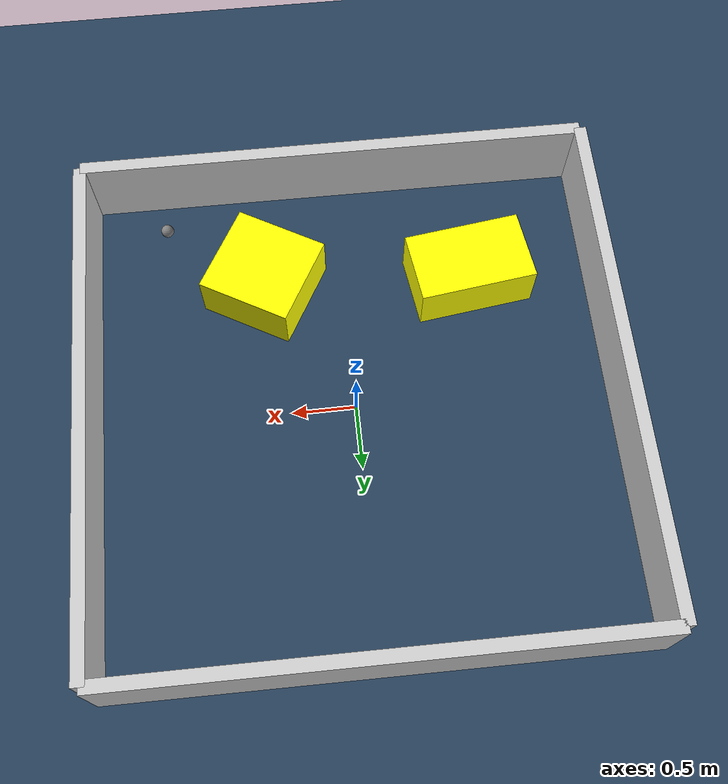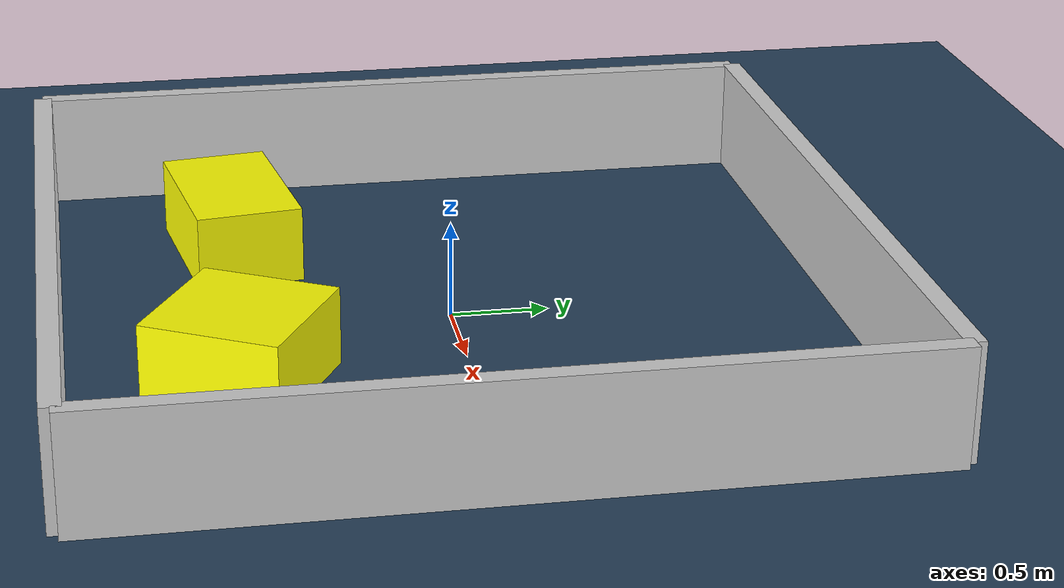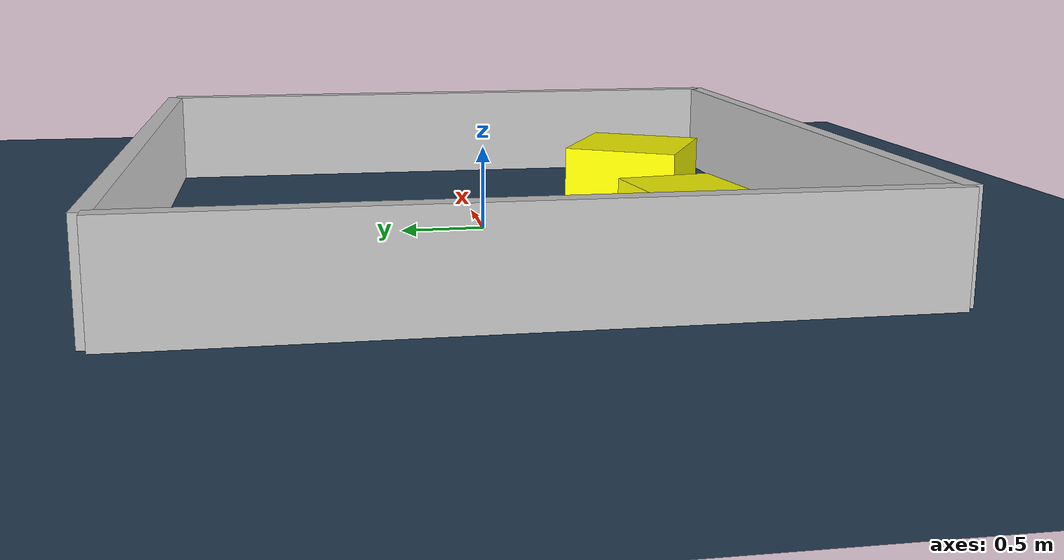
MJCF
<?xml version="1.0" ?>
<mujoco model="generated_environment">
  <option timestep="0.01" integrator="RK4" cone="elliptic"/>
  <default>
    <geom density="1"/>
  </default>
  <asset>
    <texture builtin="gradient" height="3072" rgb1="0.3 0.5 0.7" rgb2="0 0 0" type="skybox" width="512"/>
    <texture builtin="checker" height="300" mark="edge" markrgb="0.8 0.8 0.8" name="groundplane" rgb1="0.2 0.3 0.4" rgb2="0.1 0.2 0.3" type="2d" width="300"/>
    <material name="groundplane" reflectance="0.2" texrepeat="5 5" texture="groundplane" texuniform="true"/>
    <material name="robot" rgba="0.0 1.0 0.0 1"/>
  </asset>
  <worldbody>
    <light dir="0 0 -1" directional="true" pos="0 0 1.5"/>
    <geom condim="4" friction="1.0 0.005 0.001" material="groundplane" name="floor" size="0 0 0.05" type="plane"/>
    <body name="walls">
      <geom name="wall_1" condim="4" pos="-2.0 0.0 0.3" rgba="0.800000011920929 0.800000011920929 0.800000011920929 1.0" size="0.05 2.0 0.3" type="box"/>
      <geom name="wall_2" condim="4" pos="2.0 0.0 0.3" rgba="0.800000011920929 0.800000011920929 0.800000011920929 1.0" size="0.05 2.0 0.3" type="box"/>
      <geom name="wall_3" condim="4" pos="0.0 -2.0 0.3" rgba="0.800000011920929 0.800000011920929 0.800000011920929 1.0" size="2.0 0.05 0.3" type="box"/>
      <geom name="wall_4" condim="4" pos="0.0 2.0 0.3" rgba="0.800000011920929 0.800000011920929 0.800000011920929 1.0" size="2.0 0.05 0.3" type="box"/>
    </body>
    <body name="robot">
      <joint name="joint_x" type="slide" pos="0 0 0" axis="1 0 0"/>
      <joint name="joint_y" type="slide" pos="0 0 0" axis="0 1 0"/>
      <geom name="robot" type="sphere" pos="1.3808342006421128 -1.6092611864885098 0.2" size="0.05" mass="5." friction="1.0 0.005 0.0001" condim="4"/>
      <site name="sensor_ball"/>
    </body>
    <body name="obstacle_1_movable">
      <geom name="obstacle_1_movable" condim="4" pos="-0.9972545997158878 -1.0259940102644607 0.2" euler="0 0 187.97534768902003" friction="1.0 0.005 0.001" rgba="1 1 0 1" size="0.4582825989796491 0.278138294130346 0.2" type="box" mass="0.1"/>
      <joint type="free"/>
    </body>
    <body name="obstacle_2_movable">
      <geom name="obstacle_2_movable" condim="4" pos="0.6280738522722527 -1.1117118946976394 0.2" euler="0 0 330.69455296172777" friction="1.0 0.005 0.001" rgba="1 1 0 1" size="0.36914063366814415 0.35876387243820884 0.2" type="box" mass="0.1"/>
      <joint type="free"/>
    </body>
  </worldbody>
  <actuator>
    <motor name="actuator_x" joint="joint_x" gear="1" ctrlrange="-1 1"/>
    <motor name="actuator_y" joint="joint_y" gear="1" ctrlrange="-1 1"/>
  </actuator>
</mujoco>
